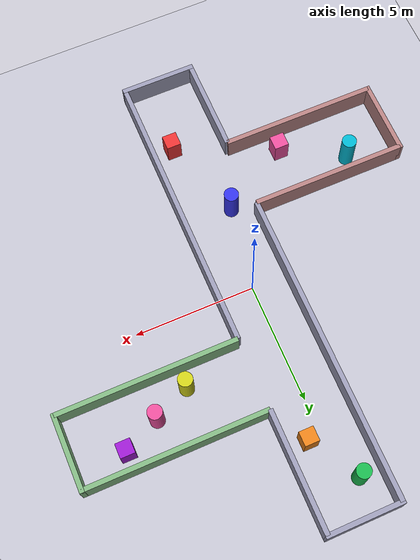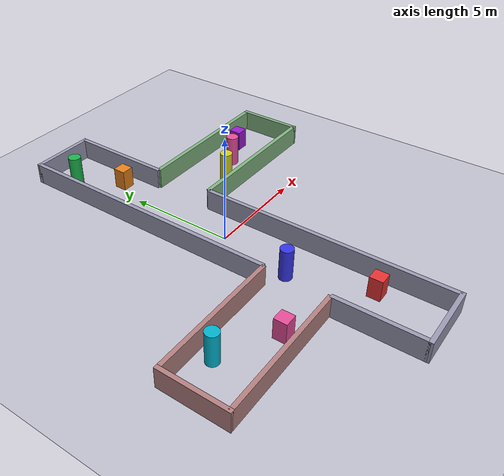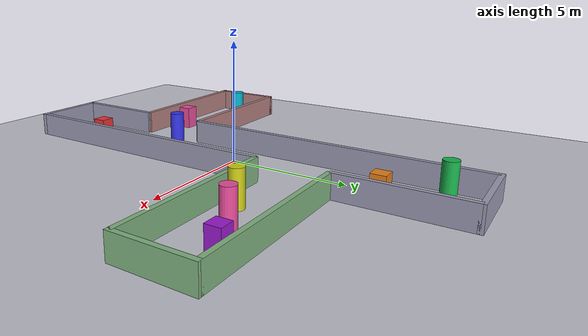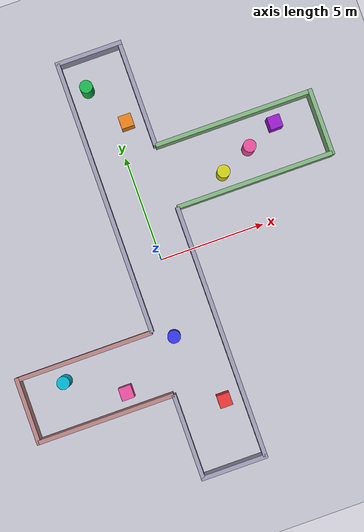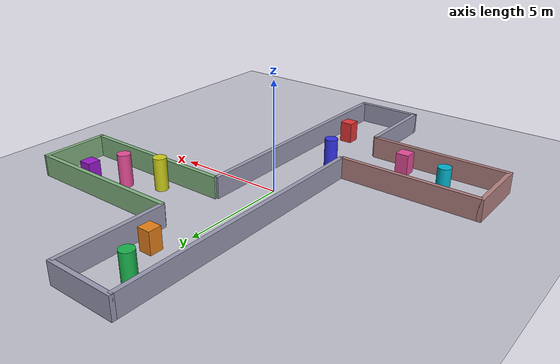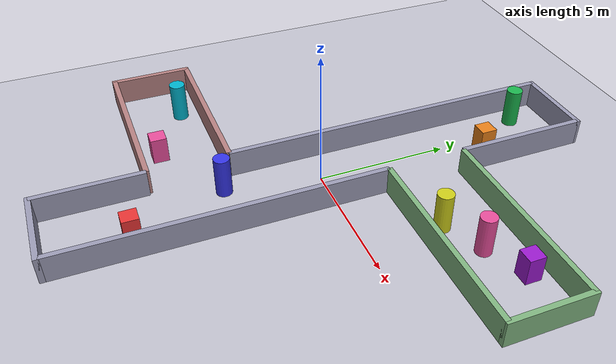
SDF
<?xml version="1.0" ?>
<sdf version="1.6">
  <world name="default">
    <physics name="1ms" type="ignored">
      <max_step_size>0.001</max_step_size>
      <real_time_factor>1.0</real_time_factor>
    </physics>
    <plugin filename="libignition-gazebo-physics-system.so"
            name="ignition::gazebo::systems::Physics"/>
    <plugin filename="libignition-gazebo-user-commands-system.so"
            name="ignition::gazebo::systems::UserCommands"/>
    <plugin filename="libignition-gazebo-scene-broadcaster-system.so"
            name="ignition::gazebo::systems::SceneBroadcaster"/>

    <light type="directional" name="sun">
      <cast_shadows>true</cast_shadows>
      <pose>0 0 10 0 0 0</pose>
      <diffuse>0.85 0.85 0.85 1</diffuse>
      <specular>0.2 0.2 0.2 1</specular>
      <attenuation>
        <range>1000</range><constant>0.9</constant>
        <linear>0.01</linear><quadratic>0.001</quadratic>
      </attenuation>
      <direction>-0.5 0.1 -0.9</direction>
    </light>

    <!-- Ground -->
    <model name="ground_plane"><static>true</static>
      <link name="link">
        <collision name="collision"><geometry><plane><normal>0 0 1</normal><size>100 100</size></plane></geometry></collision>
        <visual name="visual"><geometry><plane><normal>0 0 1</normal><size>100 100</size></plane></geometry>
          <material><ambient>0.75 0.75 0.8 1</ambient><diffuse>0.75 0.75 0.8 1</diffuse></material></visual>
      </link>
    </model>

    <!-- West wall: south of left-branch gap y=-10→-6 (len=4, cy=-8) -->
    <model name="west_s1"><static>true</static><pose>-1.5 -8 0.5 0 0 0</pose>
      <link name="link"><collision name="c"><geometry><box><size>0.2 4 1</size></box></geometry></collision>
        <visual name="v"><geometry><box><size>0.2 4 1</size></box></geometry>
          <material><ambient>0.6 0.6 0.7 1</ambient><diffuse>0.6 0.6 0.7 1</diffuse></material></visual></link>
    </model>
    <!-- West wall: north of left-branch gap y=-3→+10 (len=13, cy=3.5) -->
    <model name="west_s2"><static>true</static><pose>-1.5 3.5 0.5 0 0 0</pose>
      <link name="link"><collision name="c"><geometry><box><size>0.2 13 1</size></box></geometry></collision>
        <visual name="v"><geometry><box><size>0.2 13 1</size></box></geometry>
          <material><ambient>0.6 0.6 0.7 1</ambient><diffuse>0.6 0.6 0.7 1</diffuse></material></visual></link>
    </model>
    <!-- East wall: south of right-branch gap y=-10→+2 (len=12, cy=-4) -->
    <model name="east_s1"><static>true</static><pose>1.5 -4 0.5 0 0 0</pose>
      <link name="link"><collision name="c"><geometry><box><size>0.2 12 1</size></box></geometry></collision>
        <visual name="v"><geometry><box><size>0.2 12 1</size></box></geometry>
          <material><ambient>0.6 0.6 0.7 1</ambient><diffuse>0.6 0.6 0.7 1</diffuse></material></visual></link>
    </model>
    <!-- East wall: north of right-branch gap y=+5→+10 (len=5, cy=7.5) -->
    <model name="east_s2"><static>true</static><pose>1.5 7.5 0.5 0 0 0</pose>
      <link name="link"><collision name="c"><geometry><box><size>0.2 5 1</size></box></geometry></collision>
        <visual name="v"><geometry><box><size>0.2 5 1</size></box></geometry>
          <material><ambient>0.6 0.6 0.7 1</ambient><diffuse>0.6 0.6 0.7 1</diffuse></material></visual></link>
    </model>
    <!-- North and South caps -->
    <model name="main_north"><static>true</static><pose>0 10 0.5 0 0 0</pose>
      <link name="link"><collision name="c"><geometry><box><size>3.2 0.2 1</size></box></geometry></collision>
        <visual name="v"><geometry><box><size>3.2 0.2 1</size></box></geometry>
          <material><ambient>0.6 0.6 0.7 1</ambient><diffuse>0.6 0.6 0.7 1</diffuse></material></visual></link>
    </model>
    <model name="main_south"><static>true</static><pose>0 -10 0.5 0 0 0</pose>
      <link name="link"><collision name="c"><geometry><box><size>3.2 0.2 1</size></box></geometry></collision>
        <visual name="v"><geometry><box><size>3.2 0.2 1</size></box></geometry>
          <material><ambient>0.6 0.6 0.7 1</ambient><diffuse>0.6 0.6 0.7 1</diffuse></material></visual></link>
    </model>

    <model name="main_obs1"><static>true</static><pose>0.6 -7 0.5 0 0 0</pose>
      <link name="link"><collision name="c"><geometry><box><size>0.6 0.6 1</size></box></geometry></collision>
        <visual name="v"><geometry><box><size>0.6 0.6 1</size></box></geometry>
          <material><ambient>0.9 0.2 0.2 1</ambient><diffuse>0.9 0.2 0.2 1</diffuse></material></visual></link>
    </model>
    <model name="main_obs2"><static>true</static><pose>-0.6 -3.5 0.75 0 0 0</pose>
      <link name="link"><collision name="c"><geometry><cylinder><radius>0.3</radius><length>1.5</length></cylinder></geometry></collision>
        <visual name="v"><geometry><cylinder><radius>0.3</radius><length>1.5</length></cylinder></geometry>
          <material><ambient>0.2 0.2 0.9 1</ambient><diffuse>0.2 0.2 0.9 1</diffuse></material></visual></link>
    </model>
    <!-- Skip y=-2 to 1 — clear spawn zone -->
    <model name="main_obs3"><static>true</static><pose>0.6 6.5 0.5 0 0 0</pose>
      <link name="link"><collision name="c"><geometry><box><size>0.6 0.6 1</size></box></geometry></collision>
        <visual name="v"><geometry><box><size>0.6 0.6 1</size></box></geometry>
          <material><ambient>0.9 0.5 0.1 1</ambient><diffuse>0.9 0.5 0.1 1</diffuse></material></visual></link>
    </model>
    <model name="main_obs4"><static>true</static><pose>-0.6 8.5 0.75 0 0 0</pose>
      <link name="link"><collision name="c"><geometry><cylinder><radius>0.3</radius><length>1.5</length></cylinder></geometry></collision>
        <visual name="v"><geometry><cylinder><radius>0.3</radius><length>1.5</length></cylinder></geometry>
          <material><ambient>0.1 0.7 0.3 1</ambient><diffuse>0.1 0.7 0.3 1</diffuse></material></visual></link>
    </model>

    <!-- ════ LEFT BRANCH (x=-1.5→-8, y=-6→-3, 3 m wide) ═══════
         South wall: y=-6, North wall: y=-3, West cap: x=-8
    ═════════════════════════════════════════════════════════════== -->
    <model name="lb_south"><static>true</static><pose>-4.75 -6 0.5 0 0 0</pose>
      <link name="link"><collision name="c"><geometry><box><size>6.5 0.2 1</size></box></geometry></collision>
        <visual name="v"><geometry><box><size>6.5 0.2 1</size></box></geometry>
          <material><ambient>0.7 0.5 0.5 1</ambient><diffuse>0.7 0.5 0.5 1</diffuse></material></visual></link>
    </model>
    <model name="lb_north"><static>true</static><pose>-4.75 -3 0.5 0 0 0</pose>
      <link name="link"><collision name="c"><geometry><box><size>6.5 0.2 1</size></box></geometry></collision>
        <visual name="v"><geometry><box><size>6.5 0.2 1</size></box></geometry>
          <material><ambient>0.7 0.5 0.5 1</ambient><diffuse>0.7 0.5 0.5 1</diffuse></material></visual></link>
    </model>
    <model name="lb_west"><static>true</static><pose>-8 -4.5 0.5 0 0 0</pose>
      <link name="link"><collision name="c"><geometry><box><size>0.2 3.2 1</size></box></geometry></collision>
        <visual name="v"><geometry><box><size>0.2 3.2 1</size></box></geometry>
          <material><ambient>0.7 0.5 0.5 1</ambient><diffuse>0.7 0.5 0.5 1</diffuse></material></visual></link>
    </model>
    <!-- Left branch obstacles — offset from south wall, leaving ≥1.5m lanes -->
    <model name="lb_obs1"><static>true</static><pose>-3.5 -5.2 0.5 0 0 0</pose>
      <link name="link"><collision name="c"><geometry><box><size>0.6 0.6 1</size></box></geometry></collision>
        <visual name="v"><geometry><box><size>0.6 0.6 1</size></box></geometry>
          <material><ambient>0.9 0.3 0.6 1</ambient><diffuse>0.9 0.3 0.6 1</diffuse></material></visual></link>
    </model>
    <model name="lb_obs2"><static>true</static><pose>-6.0 -3.8 0.75 0 0 0</pose>
      <link name="link"><collision name="c"><geometry><cylinder><radius>0.3</radius><length>1.5</length></cylinder></geometry></collision>
        <visual name="v"><geometry><cylinder><radius>0.3</radius><length>1.5</length></cylinder></geometry>
          <material><ambient>0.0 0.7 0.8 1</ambient><diffuse>0.0 0.7 0.8 1</diffuse></material></visual></link>
    </model>

    <!-- ════ RIGHT BRANCH (x=+1.5→+9, y=+2→+5, 3 m wide) ══════
         South wall: y=+2, North wall: y=+5, East cap: x=+9
    ═════════════════════════════════════════════════════════════== -->
    <model name="rb_south"><static>true</static><pose>5.25 2 0.5 0 0 0</pose>
      <link name="link"><collision name="c"><geometry><box><size>7.5 0.2 1</size></box></geometry></collision>
        <visual name="v"><geometry><box><size>7.5 0.2 1</size></box></geometry>
          <material><ambient>0.5 0.7 0.5 1</ambient><diffuse>0.5 0.7 0.5 1</diffuse></material></visual></link>
    </model>
    <model name="rb_north"><static>true</static><pose>5.25 5 0.5 0 0 0</pose>
      <link name="link"><collision name="c"><geometry><box><size>7.5 0.2 1</size></box></geometry></collision>
        <visual name="v"><geometry><box><size>7.5 0.2 1</size></box></geometry>
          <material><ambient>0.5 0.7 0.5 1</ambient><diffuse>0.5 0.7 0.5 1</diffuse></material></visual></link>
    </model>
    <model name="rb_east"><static>true</static><pose>9 3.5 0.5 0 0 0</pose>
      <link name="link"><collision name="c"><geometry><box><size>0.2 3.2 1</size></box></geometry></collision>
        <visual name="v"><geometry><box><size>0.2 3.2 1</size></box></geometry>
          <material><ambient>0.5 0.7 0.5 1</ambient><diffuse>0.5 0.7 0.5 1</diffuse></material></visual></link>
    </model>
    <!-- Right branch obstacles -->
    <model name="rb_obs1"><static>true</static><pose>4.0 2.8 0.75 0 0 0</pose>
      <link name="link"><collision name="c"><geometry><cylinder><radius>0.3</radius><length>1.5</length></cylinder></geometry></collision>
        <visual name="v"><geometry><cylinder><radius>0.3</radius><length>1.5</length></cylinder></geometry>
          <material><ambient>0.8 0.8 0.1 1</ambient><diffuse>0.8 0.8 0.1 1</diffuse></material></visual></link>
    </model>
    <model name="rb_obs2"><static>true</static><pose>7.0 4.2 0.5 0 0 0</pose>
      <link name="link"><collision name="c"><geometry><box><size>0.6 0.6 1</size></box></geometry></collision>
        <visual name="v"><geometry><box><size>0.6 0.6 1</size></box></geometry>
          <material><ambient>0.6 0.1 0.8 1</ambient><diffuse>0.6 0.1 0.8 1</diffuse></material></visual></link>
    </model>
    <model name="rb_obs3"><static>true</static><pose>5.5 3.5 0.75 0 0 0</pose>
      <link name="link"><collision name="c"><geometry><cylinder><radius>0.3</radius><length>1.5</length></cylinder></geometry></collision>
        <visual name="v"><geometry><cylinder><radius>0.3</radius><length>1.5</length></cylinder></geometry>
          <material><ambient>0.9 0.3 0.6 1</ambient><diffuse>0.9 0.3 0.6 1</diffuse></material></visual></link>
    </model>

  </world>
</sdf>
